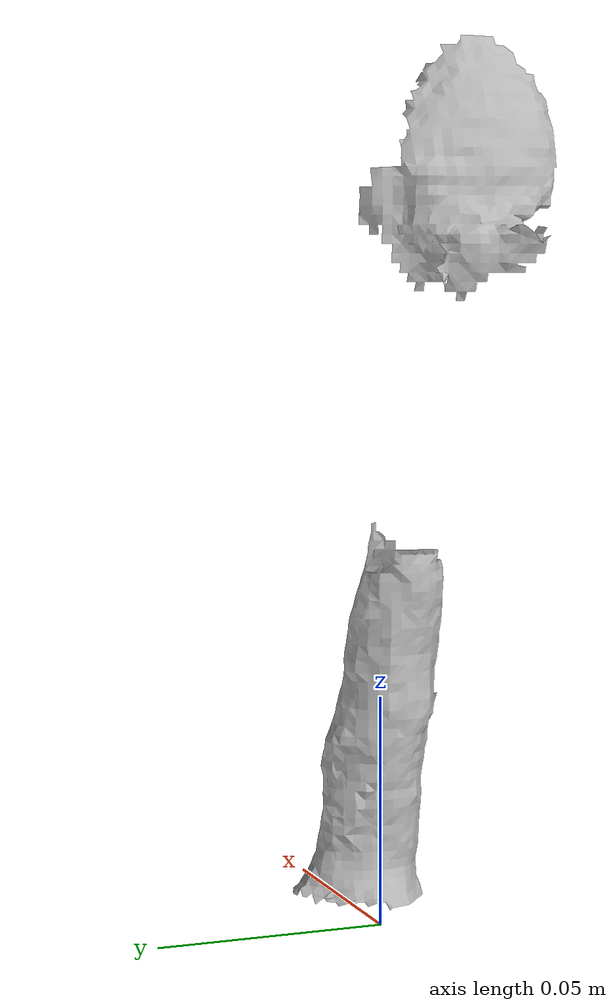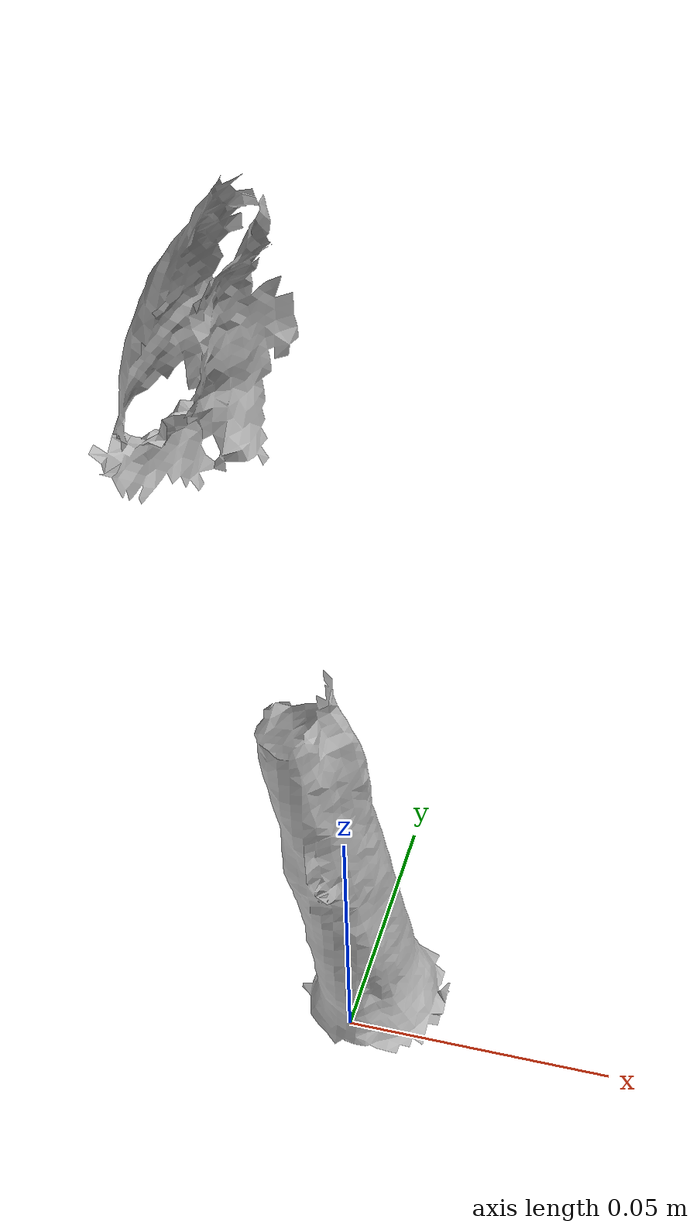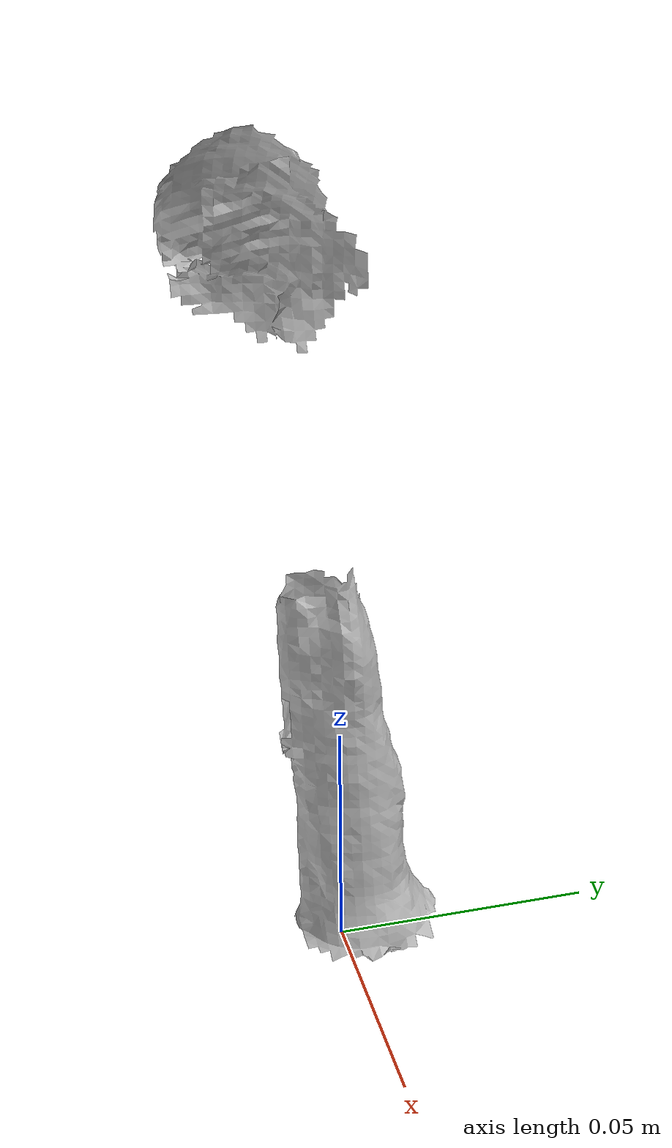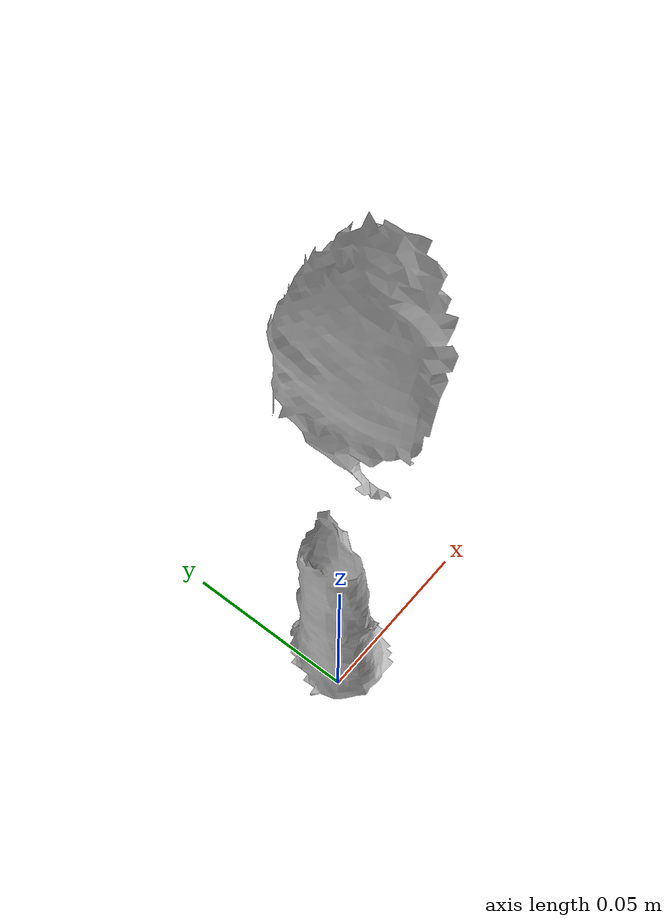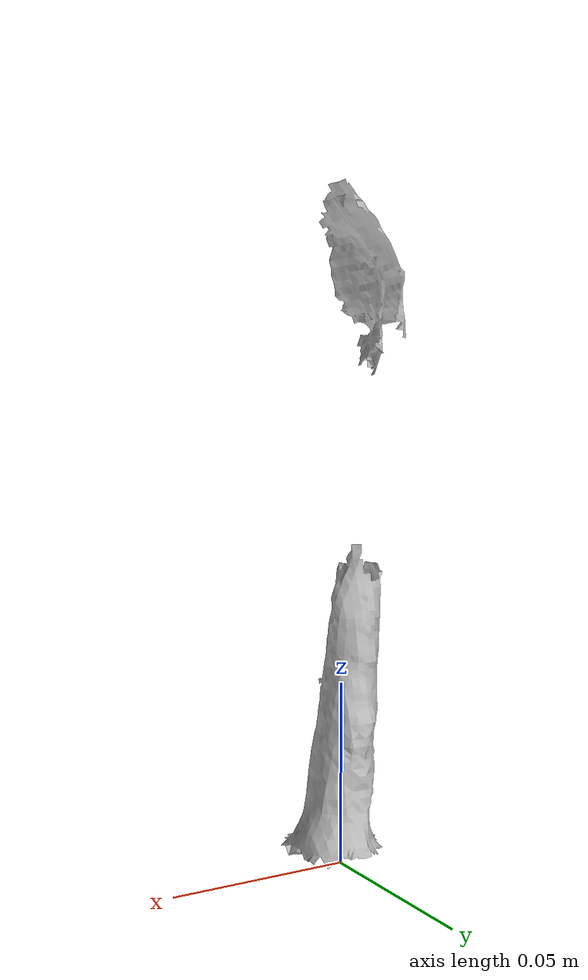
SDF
<?xml version="1.0" ?>
<sdf version="1.4">
  <model name="031_spoon">
    <pose>0 0 0  0 0 0</pose>
    <link name="body">
      <inertial>
        <!-- Volume:  3.8566757000e-05 -->
        <mass> 1.0 </mass>
        <!-- Center of mass: -3.4138600000e-03 -5.7928300000e-03  8.3319380000e-02 -->
        <pose> -3.4138600000e-03 -5.7928300000e-03  8.3319380000e-02 0 0 0 </pose>
        <!-- Inertia matrix -->
        <inertia>
          <ixx>  3.8920550903e-03 </ixx>
          <ixy> -2.2995288403e-05 </ixy>
          <ixz>  1.9646179740e-04 </ixz>
          <iyy>  3.8452871809e-03 </iyy>
          <iyz>  4.3455419391e-04 </iyz>
          <izz>  1.1817416486e-04 </izz>
        </inertia>
      </inertial>
      <visual name="visual">
        <geometry>
          <mesh>
            <uri>model://031_spoon/nontextured.stl</uri>
          </mesh>
        </geometry>
      </visual>
      <collision name="collision">
        <geometry>
          <mesh>
            <uri>model://031_spoon/nontextured.stl</uri>
          </mesh>
        </geometry>
        <max_contacts>10</max_contacts>
        <surface>
          <friction>
            <ode>
              <mu>0.8</mu>
              <mu2>0.8</mu2>
              <slip1>0</slip1>
              <slip2>0</slip2>
            </ode>
            <torsional>
              <ode/>
            </torsional>
          </friction>
          <contact>
            <ode>
              <kp>1000000.0</kp>
              <kd>1.0</kd>
              <max_vel>0.0</max_vel>
            </ode>
          </contact>
        </surface>
      </collision>
    </link>
  </model>
</sdf>
